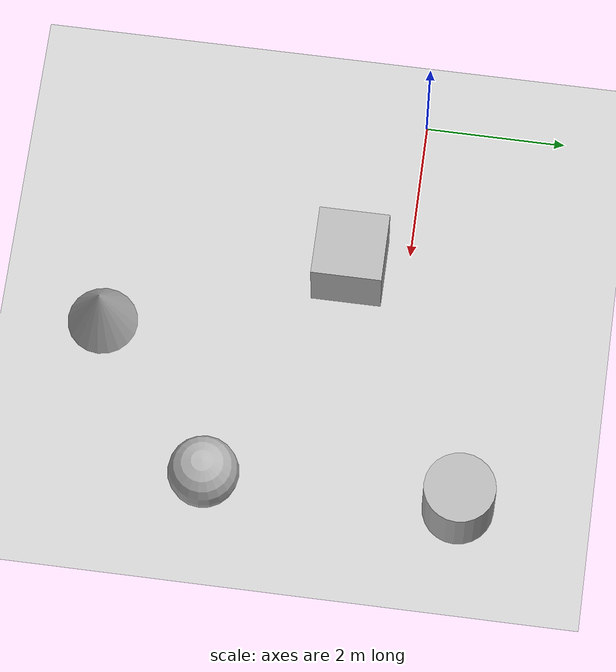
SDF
<sdf version='1.10'>
  <world name='empty'>
    <physics name='1ms' type='ignored'>
      <max_step_size>0.001</max_step_size>
      <real_time_factor>1</real_time_factor>
      <real_time_update_rate>1000</real_time_update_rate>
    </physics>
    <plugin name='gz::sim::systems::Physics' filename='gz-sim-physics-system'/>
    <plugin name='gz::sim::systems::UserCommands' filename='gz-sim-user-commands-system'/>
    <plugin name='gz::sim::systems::SceneBroadcaster' filename='gz-sim-scene-broadcaster-system'/>
    <plugin name='gz::sim::systems::Sensors' filename='gz-sim-sensors-system'>
      <render_engine>ogre2</render_engine>
    </plugin>
    <plugin name='gz::sim::systems::Contact' filename='gz-sim-contact-system'/>
    <gravity>0 0 -9.8000000000000007</gravity>
    <magnetic_field>5.5644999999999998e-06 2.2875799999999999e-05 -4.2388400000000002e-05</magnetic_field>
    <atmosphere type='adiabatic'/>
    <scene>
      <ambient>0.400000006 0.400000006 0.400000006 1</ambient>
      <background>0.699999988 0.699999988 0.699999988 1</background>
      <shadows>true</shadows>
    </scene>
    <model name='ground_plane'>
      <static>true</static>
      <link name='link'>
        <collision name='collision'>
          <geometry>
            <plane>
              <normal>0 0 1</normal>
              <size>100 100</size>
            </plane>
          </geometry>
          <surface>
            <friction>
              <ode/>
            </friction>
            <bounce/>
            <contact/>
          </surface>
        </collision>
        <visual name='visual'>
          <geometry>
            <plane>
              <normal>0 0 1</normal>
              <size>100 100</size>
            </plane>
          </geometry>
          <material>
            <ambient>0.800000012 0.800000012 0.800000012 1</ambient>
            <diffuse>0.800000012 0.800000012 0.800000012 1</diffuse>
            <specular>0.800000012 0.800000012 0.800000012 1</specular>
          </material>
        </visual>
        <pose>0 0 0 0 0 0</pose>
        <inertial>
          <pose>0 0 0 0 0 0</pose>
          <mass>1</mass>
          <inertia>
            <ixx>1</ixx>
            <ixy>0</ixy>
            <ixz>0</ixz>
            <iyy>1</iyy>
            <iyz>0</iyz>
            <izz>1</izz>
          </inertia>
        </inertial>
        <enable_wind>false</enable_wind>
      </link>
      <pose>0 0 0 0 0 0</pose>
      <self_collide>false</self_collide>
    </model>
    <model name='box'>
      <pose>2.324672105985329 -0.82923454497144267 0.49999999019962588 2.6060654439555549e-17 -2.8483226404668569e-17 5.610022300215042e-19</pose>
      <link name='box_link'>
        <inertial>
          <inertia>
            <ixx>0.16666</ixx>
            <ixy>0</ixy>
            <ixz>0</ixz>
            <iyy>0.16666</iyy>
            <iyz>0</iyz>
            <izz>0.16666</izz>
          </inertia>
          <mass>1</mass>
          <pose>0 0 0 0 0 0</pose>
        </inertial>
        <collision name='box_collision'>
          <geometry>
            <box>
              <size>1 1 1</size>
            </box>
          </geometry>
          <surface>
            <friction>
              <ode/>
            </friction>
            <bounce/>
            <contact/>
          </surface>
        </collision>
        <visual name='box_visual'>
          <geometry>
            <box>
              <size>1 1 1</size>
            </box>
          </geometry>
          <material>
            <ambient>0.300000012 0.300000012 0.300000012 1</ambient>
            <diffuse>0.699999988 0.699999988 0.699999988 1</diffuse>
            <specular>1 1 1 1</specular>
          </material>
        </visual>
        <pose>0 0 0 0 0 0</pose>
        <enable_wind>false</enable_wind>
      </link>
      <static>false</static>
      <self_collide>false</self_collide>
    </model>
    <model name='cylinder'>
      <pose>5.7035630836147968 1.1153167271987572 0.49999999631413172 5.9817090687115842e-17 1.421334396779567e-17 3.2367935484795115e-17</pose>
      <link name='cylinder_link'>
        <inertial>
          <inertia>
            <ixx>0.14580000000000001</ixx>
            <ixy>0</ixy>
            <ixz>0</ixz>
            <iyy>0.14580000000000001</iyy>
            <iyz>0</iyz>
            <izz>0.125</izz>
          </inertia>
          <mass>1</mass>
          <pose>0 0 0 0 0 0</pose>
        </inertial>
        <collision name='cylinder_collision'>
          <geometry>
            <cylinder>
              <radius>0.5</radius>
              <length>1</length>
            </cylinder>
          </geometry>
          <surface>
            <friction>
              <ode/>
            </friction>
            <bounce/>
            <contact/>
          </surface>
        </collision>
        <visual name='cylinder_visual'>
          <geometry>
            <cylinder>
              <radius>0.5</radius>
              <length>1</length>
            </cylinder>
          </geometry>
          <material>
            <ambient>0.300000012 0.300000012 0.300000012 1</ambient>
            <diffuse>0.699999988 0.699999988 0.699999988 1</diffuse>
            <specular>1 1 1 1</specular>
          </material>
        </visual>
        <pose>0 0 0 0 0 0</pose>
        <enable_wind>false</enable_wind>
      </link>
      <static>false</static>
      <self_collide>false</self_collide>
    </model>
    <model name='cone'>
      <pose>3.5517864891520992 -4.2139245306433306 0.49999999437166948 2.8995221118715626e-10 -1.4186283755537282e-05 6.83310446522355e-11</pose>
      <link name='cone_link'>
        <inertial>
          <inertia>
            <ixx>0.074999999999999997</ixx>
            <ixy>0</ixy>
            <ixz>0</ixz>
            <iyy>0.074999999999999997</iyy>
            <iyz>0</iyz>
            <izz>0.074999999999999997</izz>
          </inertia>
          <mass>1</mass>
          <pose>0 0 0 0 0 0</pose>
        </inertial>
        <collision name='cone_collision'>
          <geometry>
            <cone>
              <radius>0.5</radius>
              <length>1</length>
            </cone>
          </geometry>
          <surface>
            <friction>
              <ode/>
            </friction>
            <bounce/>
            <contact/>
          </surface>
        </collision>
        <visual name='cone_visual'>
          <geometry>
            <cone>
              <radius>0.5</radius>
              <length>1</length>
            </cone>
          </geometry>
          <material>
            <ambient>0.300000012 0.300000012 0.300000012 1</ambient>
            <diffuse>0.699999988 0.699999988 0.699999988 1</diffuse>
            <specular>1 1 1 1</specular>
          </material>
        </visual>
        <pose>0 0 0 0 0 0</pose>
        <enable_wind>false</enable_wind>
      </link>
      <static>false</static>
      <self_collide>false</self_collide>
    </model>
    <model name='sphere'>
      <pose>5.7698156558397162 -2.4372667433700475 0.49999999020007918 0 0 0</pose>
      <link name='sphere_link'>
        <inertial>
          <inertia>
            <ixx>0.10000000000000001</ixx>
            <ixy>0</ixy>
            <ixz>0</ixz>
            <iyy>0.10000000000000001</iyy>
            <iyz>0</iyz>
            <izz>0.10000000000000001</izz>
          </inertia>
          <mass>1</mass>
          <pose>0 0 0 0 0 0</pose>
        </inertial>
        <collision name='sphere_collision'>
          <geometry>
            <sphere>
              <radius>0.5</radius>
            </sphere>
          </geometry>
          <surface>
            <friction>
              <ode/>
            </friction>
            <bounce/>
            <contact/>
          </surface>
        </collision>
        <visual name='sphere_visual'>
          <geometry>
            <sphere>
              <radius>0.5</radius>
            </sphere>
          </geometry>
          <material>
            <ambient>0.300000012 0.300000012 0.300000012 1</ambient>
            <diffuse>0.699999988 0.699999988 0.699999988 1</diffuse>
            <specular>1 1 1 1</specular>
          </material>
        </visual>
        <pose>0 0 0 0 0 0</pose>
        <enable_wind>false</enable_wind>
      </link>
      <static>false</static>
      <self_collide>false</self_collide>
    </model>
    <light name='sun' type='directional'>
      <pose>0 0 10 0 0 0</pose>
      <cast_shadows>true</cast_shadows>
      <intensity>1</intensity>
      <direction>-0.5 0.10000000000000001 -0.90000000000000002</direction>
      <diffuse>0.800000012 0.800000012 0.800000012 1</diffuse>
      <specular>0.200000003 0.200000003 0.200000003 1</specular>
      <attenuation>
        <range>1000</range>
        <linear>0.01</linear>
        <constant>0.90000000000000002</constant>
        <quadratic>0.001</quadratic>
      </attenuation>
      <spot>
        <inner_angle>0</inner_angle>
        <outer_angle>0</outer_angle>
        <falloff>0</falloff>
      </spot>
    </light>
  </world>
</sdf>
